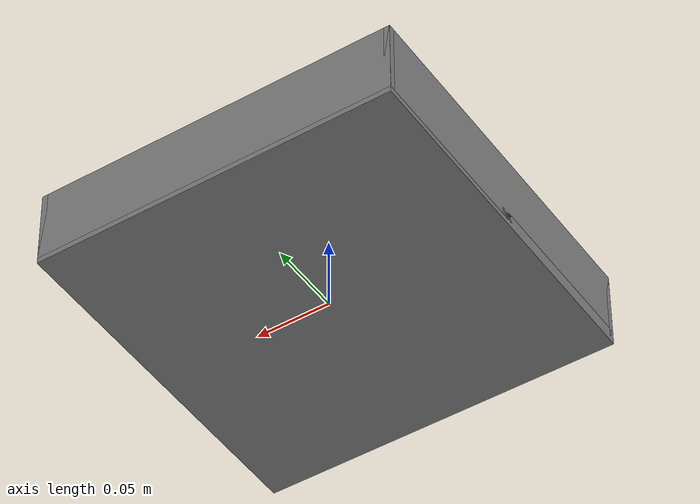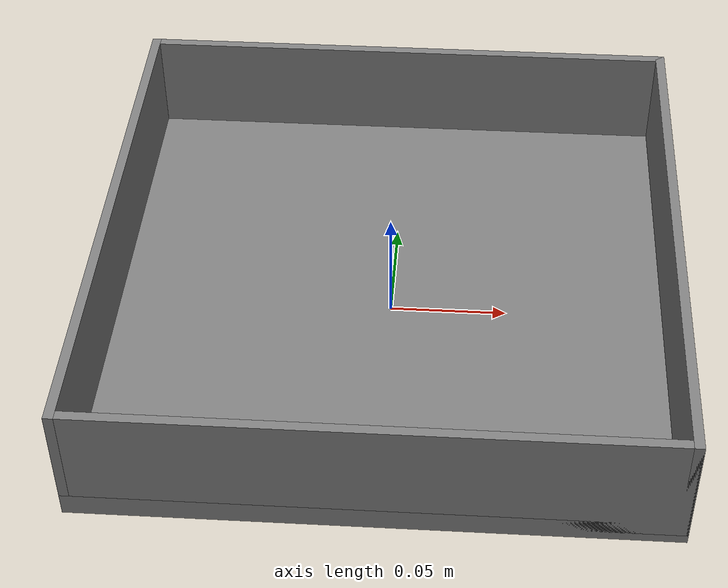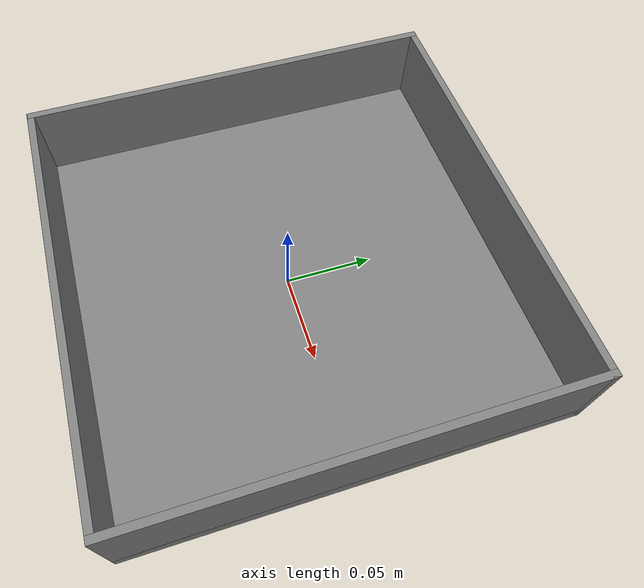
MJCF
<mujoco model="open_tray">
  <compiler angle="radian"/>
  <worldbody>
    <body name="tray" pos="0 0 0">
      <geom name="tray_bottom" type="box" size="0.12 0.12 0.005" pos="0 0 0.005"/>
      <geom name="tray_wall_xp" type="box" size="0.002 0.12 0.025" pos="0.118 0 0.029"/>
      <geom name="tray_wall_xn" type="box" size="0.002 0.12 0.025" pos="-0.118 0 0.029"/>
      <geom name="tray_wall_yp" type="box" size="0.12 0.002 0.025" pos="0 0.118 0.029"/>
      <geom name="tray_wall_yn" type="box" size="0.12 0.002 0.025" pos="0 -0.118 0.029"/>
    </body>
  </worldbody>
</mujoco>
